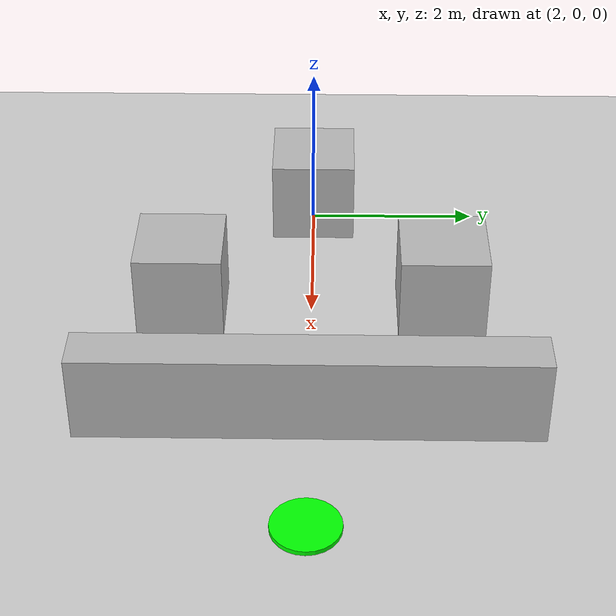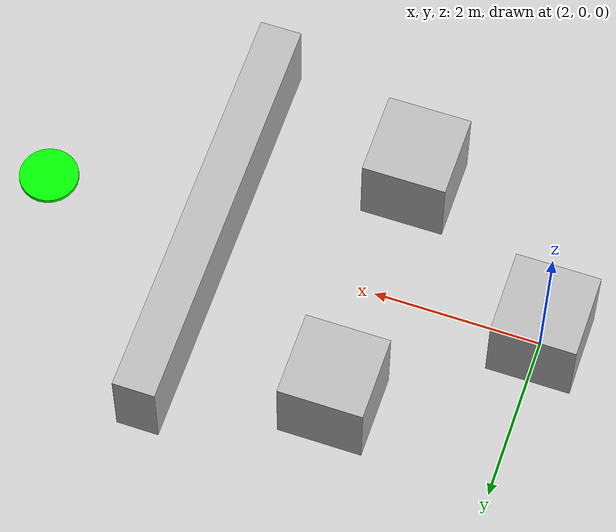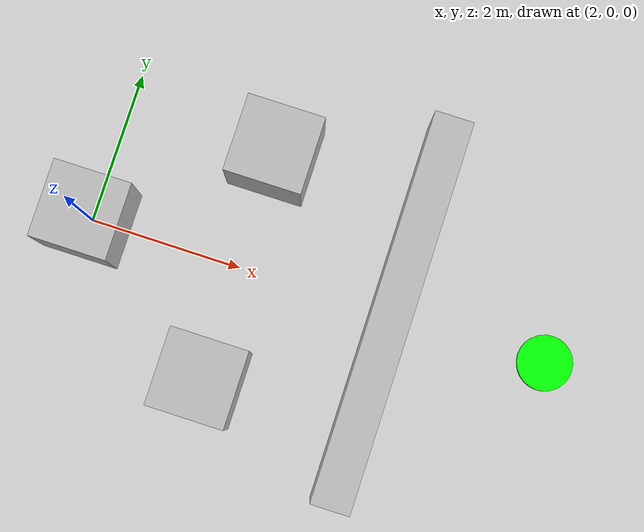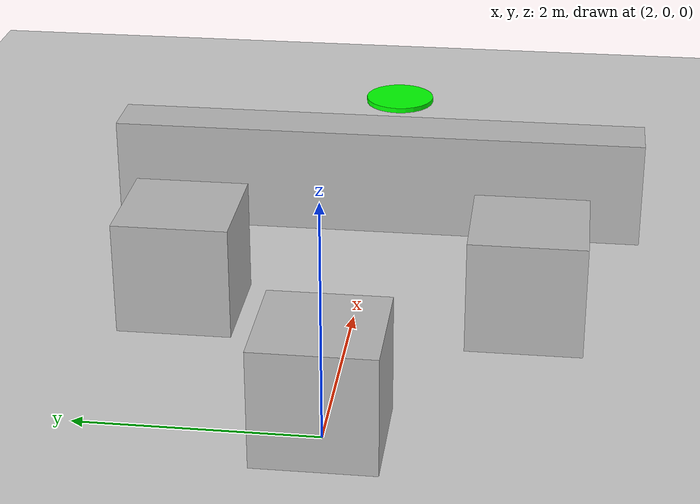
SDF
<?xml version="1.0" ?>

<sdf version="1.6">

  <world name="obstacle_world">

    <!-- Ground -->

    <include>
      <uri>model://ground_plane</uri>
    </include>

    <!-- Sun -->

    <include>
      <uri>model://sun</uri>
    </include>

    <!-- Obstacle 1 -->

    <model name="obstacle_1">

      <static>true</static>

      <pose>2 0 0.5 0 0 0</pose>

      <link name="link">

        <collision name="collision">

          <geometry>
            <box>
              <size>1 1 1</size>
            </box>
          </geometry>

        </collision>

        <visual name="visual">

          <geometry>
            <box>
              <size>1 1 1</size>
            </box>
          </geometry>

        </visual>

      </link>

    </model>

    <!-- Obstacle 2 -->

    <model name="obstacle_2">

      <static>true</static>

      <pose>4 1.5 0.5 0 0 0</pose>

      <link name="link">

        <collision name="collision">

          <geometry>
            <box>
              <size>1 1 1</size>
            </box>
          </geometry>

        </collision>

        <visual name="visual">

          <geometry>
            <box>
              <size>1 1 1</size>
            </box>
          </geometry>

        </visual>

      </link>

    </model>

    <!-- Obstacle 3 -->

    <model name="obstacle_3">

      <static>true</static>

      <pose>4 -1.5 0.5 0 0 0</pose>

      <link name="link">

        <collision name="collision">

          <geometry>
            <box>
              <size>1 1 1</size>
            </box>
          </geometry>

        </collision>

        <visual name="visual">

          <geometry>
            <box>
              <size>1 1 1</size>
            </box>
          </geometry>

        </visual>

      </link>

    </model>

    <!-- Long wall -->

    <model name="wall">

      <static>true</static>

      <pose>6 0 0.5 0 0 0</pose>

      <link name="link">

        <collision name="collision">

          <geometry>
            <box>
              <size>0.5 5 1</size>
            </box>
          </geometry>

        </collision>

        <visual name="visual">

          <geometry>
            <box>
              <size>0.5 5 1</size>
            </box>
          </geometry>

        </visual>

      </link>

    </model>
  <!-- Goal -->

  <model name="goal">

    <static>true</static>

    <pose>8 0 0.5 0 0 0</pose>

    <link name="link">

      <visual name="visual">

        <geometry>
          <cylinder>
            <radius>0.35</radius>
            <length>0.05</length>
          </cylinder>
        </geometry>

        <material>
          <ambient>0 1 0 1</ambient>
          <diffuse>0 1 0 1</diffuse>
          <specular>0 0 0 1</specular>
        </material>

      </visual>

    </link>

  </model>
  </world>

</sdf>
